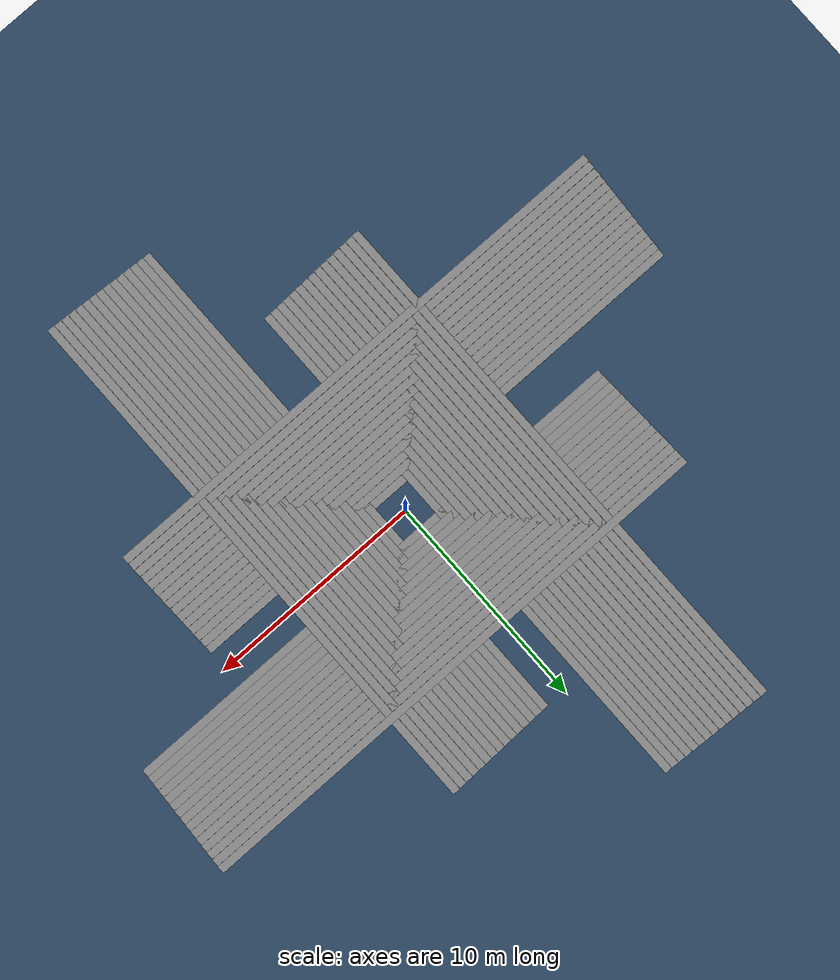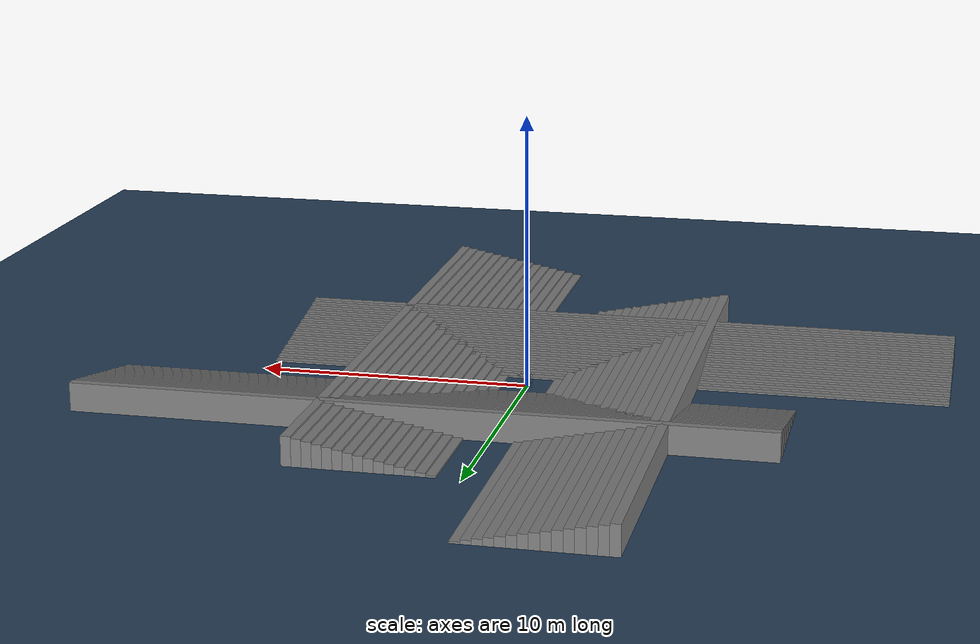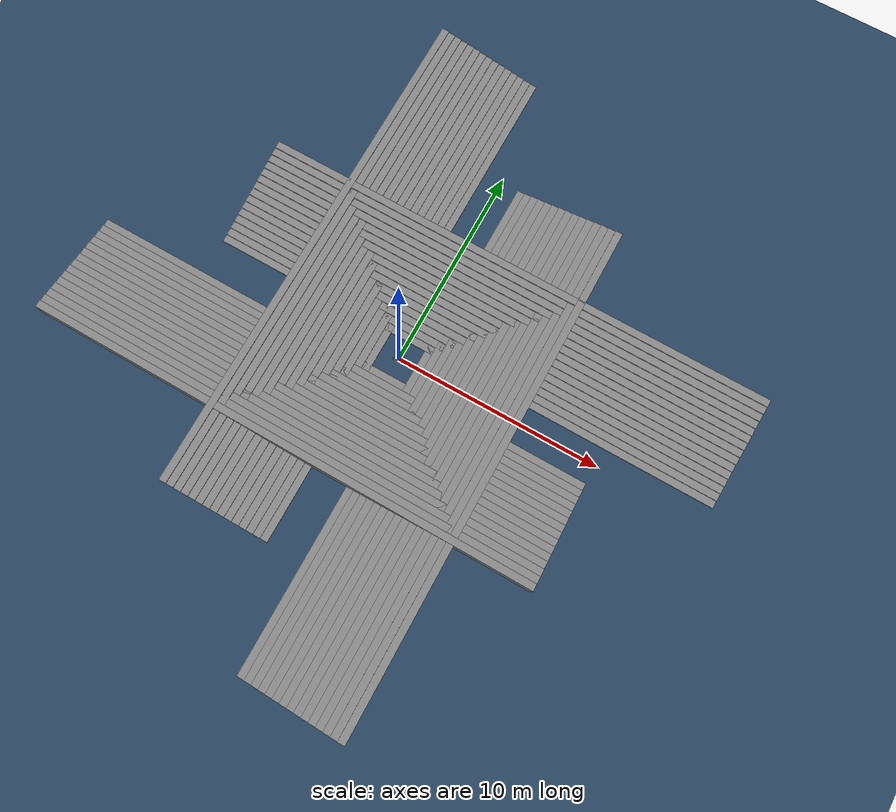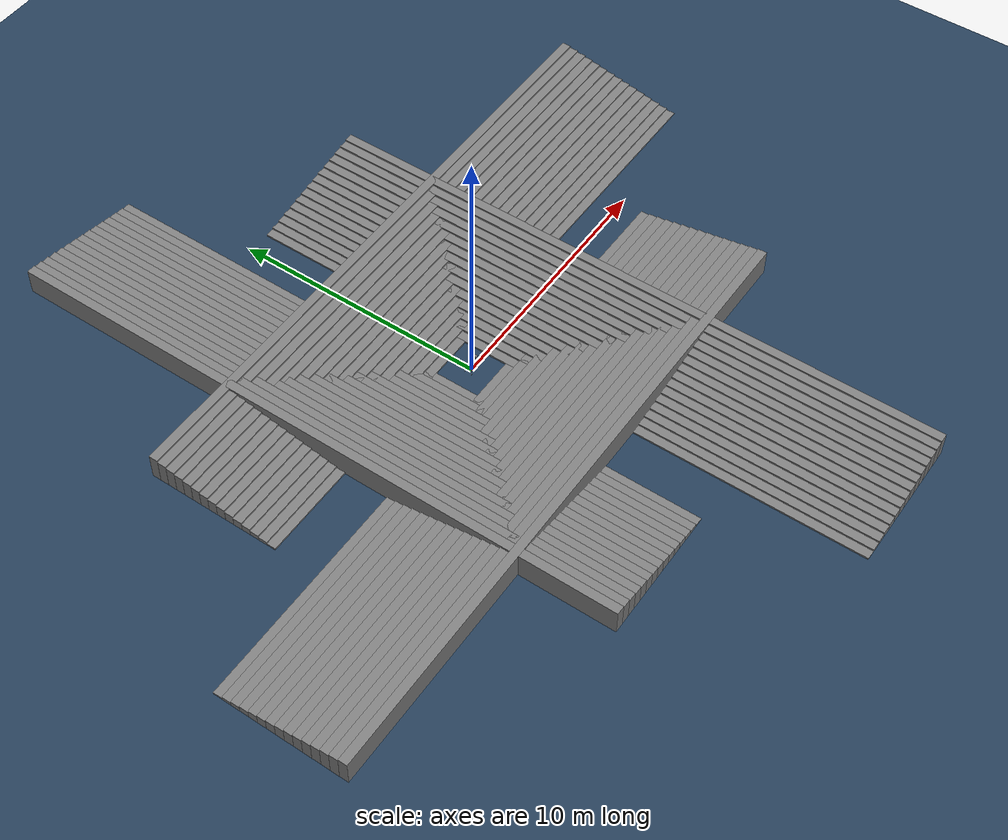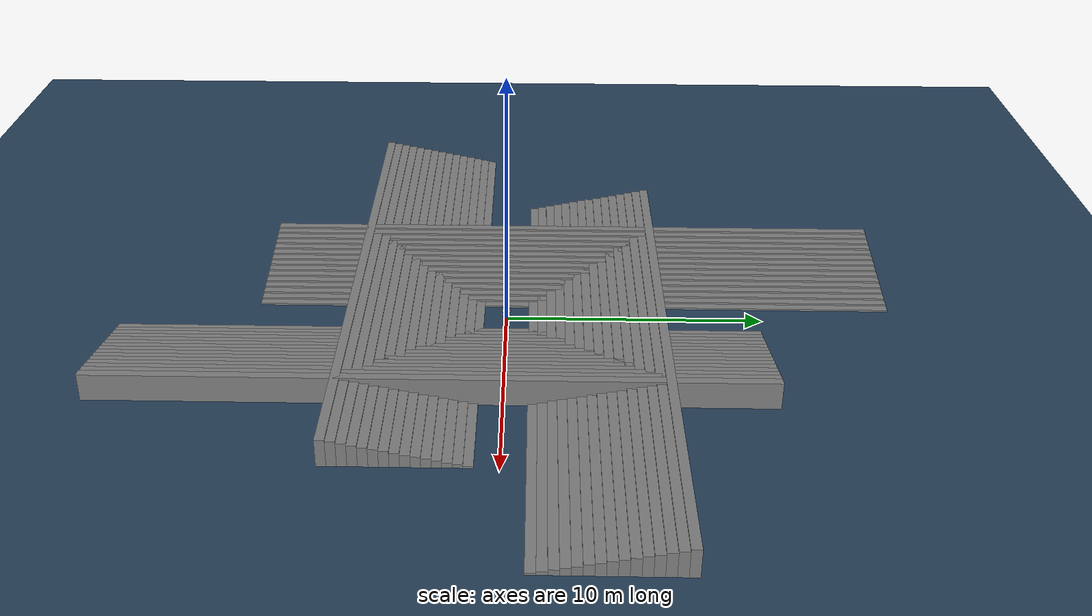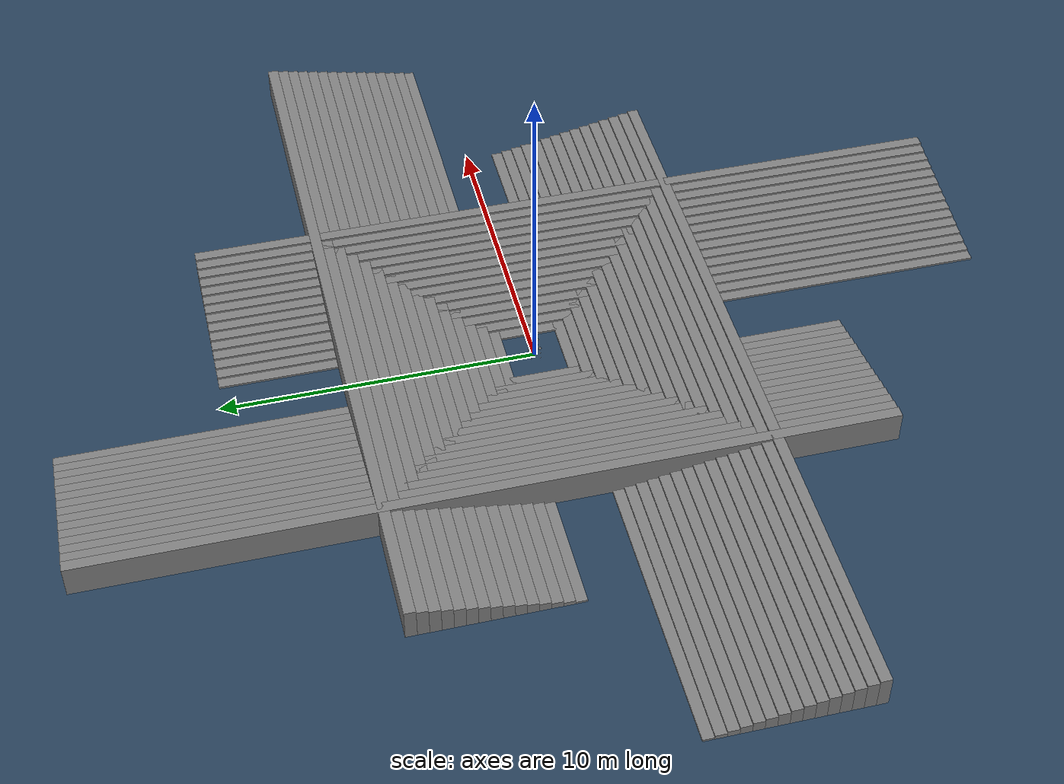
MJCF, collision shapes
<mujoco model="go2 scene">
  <include file="go2_mjx_feetonly.xml" />

  <statistic center="0 0 0.1" extent="0.8" />

  <visual>
    <headlight diffuse="0.6 0.6 0.6" ambient="0.3 0.3 0.3" specular="0 0 0" />
    <rgba haze="0.15 0.25 0.35 1" />
    <global azimuth="-130" elevation="-20" />
  </visual>

  <asset>
    <texture type="skybox" builtin="gradient" rgb1="0.3 0.5 0.7" rgb2="0 0 0" width="512" height="3072" />
    <texture type="2d" name="groundplane" builtin="checker" mark="edge" rgb1="0.2 0.3 0.4" rgb2="0.1 0.2 0.3" markrgb="0.8 0.8 0.8" width="300" height="300" />
    <material name="groundplane" texture="groundplane" texuniform="true" texrepeat="5 5" reflectance="0.2" />
  </asset>

  <worldbody>
    <light pos="0 0 1.5" dir="0 0 -1" directional="true" />
    <geom name="floor" pos="0 0 -1e-3" size="0 0 0.01" type="plane" contype="2" conaffinity="1" material="groundplane" />
  <body pos="1.0499999999999998 -2.625 0.035" quat="1.0 0.0 0.0 0.0" name="box_OXrZo"><geom type="box" size="0.175 12.5 0.035" contype="2" conaffinity="1" /></body><body pos="1.4 -2.625 0.07" quat="1.0 0.0 0.0 0.0" name="box_JxrvV"><geom type="box" size="0.175 12.5 0.07" contype="2" conaffinity="1" /></body><body pos="1.75 -2.625 0.10500000000000001" quat="1.0 0.0 0.0 0.0" name="box_W2zAn"><geom type="box" size="0.175 12.5 0.10500000000000001" contype="2" conaffinity="1" /></body><body pos="2.0999999999999996 -2.625 0.14" quat="1.0 0.0 0.0 0.0" name="box_HIghV"><geom type="box" size="0.175 12.5 0.14" contype="2" conaffinity="1" /></body><body pos="2.4499999999999997 -2.625 0.17500000000000002" quat="1.0 0.0 0.0 0.0" name="box_5wX6B"><geom type="box" size="0.175 12.5 0.17500000000000002" contype="2" conaffinity="1" /></body><body pos="2.8 -2.625 0.21000000000000002" quat="1.0 0.0 0.0 0.0" name="box_v3nrt"><geom type="box" size="0.175 12.5 0.21000000000000002" contype="2" conaffinity="1" /></body><body pos="3.15 -2.625 0.24500000000000002" quat="1.0 0.0 0.0 0.0" name="box_5fhSh"><geom type="box" size="0.175 12.5 0.24500000000000002" contype="2" conaffinity="1" /></body><body pos="3.5 -2.625 0.28" quat="1.0 0.0 0.0 0.0" name="box_dRxqI"><geom type="box" size="0.175 12.5 0.28" contype="2" conaffinity="1" /></body><body pos="3.85 -2.625 0.31500000000000006" quat="1.0 0.0 0.0 0.0" name="box_NodoP"><geom type="box" size="0.175 12.5 0.31500000000000006" contype="2" conaffinity="1" /></body><body pos="4.2 -2.625 0.3500000000000001" quat="1.0 0.0 0.0 0.0" name="box_2KfXV"><geom type="box" size="0.175 12.5 0.3500000000000001" contype="2" conaffinity="1" /></body><body pos="4.550000000000001 -2.625 0.3850000000000001" quat="1.0 0.0 0.0 0.0" name="box_l3Iw6"><geom type="box" size="0.175 12.5 0.3850000000000001" contype="2" conaffinity="1" /></body><body pos="4.9 -2.625 0.42000000000000015" quat="1.0 0.0 0.0 0.0" name="box_0yF7s"><geom type="box" size="0.175 12.5 0.42000000000000015" contype="2" conaffinity="1" /></body><body pos="5.25 -2.625 0.4550000000000002" quat="1.0 0.0 0.0 0.0" name="box_IzRpZ"><geom type="box" size="0.175 12.5 0.4550000000000002" contype="2" conaffinity="1" /></body><body pos="5.6 -2.625 0.4900000000000002" quat="1.0 0.0 0.0 0.0" name="box_MKdHR"><geom type="box" size="0.175 12.5 0.4900000000000002" contype="2" conaffinity="1" /></body><body pos="5.949999999999999 -2.625 0.5250000000000002" quat="1.0 0.0 0.0 0.0" name="box_BC6ZX"><geom type="box" size="0.175 12.5 0.5250000000000002" contype="2" conaffinity="1" /></body><body pos="2.625 1.0500000000000003 0.035" quat="0.7071067811865476 0.0 0.0 0.7071067811865475" name="box_NvFSA"><geom type="box" size="0.175 12.5 0.035" contype="2" conaffinity="1" /></body><body pos="2.625 1.4000000000000004 0.07" quat="0.7071067811865476 0.0 0.0 0.7071067811865475" name="box_u7tkv"><geom type="box" size="0.175 12.5 0.07" contype="2" conaffinity="1" /></body><body pos="2.625 1.7500000000000007 0.10500000000000001" quat="0.7071067811865476 0.0 0.0 0.7071067811865475" name="box_N826C"><geom type="box" size="0.175 12.5 0.10500000000000001" contype="2" conaffinity="1" /></body><body pos="2.625 2.1000000000000005 0.14" quat="0.7071067811865476 0.0 0.0 0.7071067811865475" name="box_wPMWJ"><geom type="box" size="0.175 12.5 0.14" contype="2" conaffinity="1" /></body><body pos="2.625 2.45 0.17500000000000002" quat="0.7071067811865476 0.0 0.0 0.7071067811865475" name="box_8RcA2"><geom type="box" size="0.175 12.5 0.17500000000000002" contype="2" conaffinity="1" /></body><body pos="2.625 2.8000000000000003 0.21000000000000002" quat="0.7071067811865476 0.0 0.0 0.7071067811865475" name="box_ZB0L3"><geom type="box" size="0.175 12.5 0.21000000000000002" contype="2" conaffinity="1" /></body><body pos="2.625 3.1500000000000004 0.24500000000000002" quat="0.7071067811865476 0.0 0.0 0.7071067811865475" name="box_6W6to"><geom type="box" size="0.175 12.5 0.24500000000000002" contype="2" conaffinity="1" /></body><body pos="2.625 3.5000000000000004 0.28" quat="0.7071067811865476 0.0 0.0 0.7071067811865475" name="box_ry0cr"><geom type="box" size="0.175 12.5 0.28" contype="2" conaffinity="1" /></body><body pos="2.625 3.8500000000000005 0.31500000000000006" quat="0.7071067811865476 0.0 0.0 0.7071067811865475" name="box_7p0jk"><geom type="box" size="0.175 12.5 0.31500000000000006" contype="2" conaffinity="1" /></body><body pos="2.625 4.200000000000001 0.3500000000000001" quat="0.7071067811865476 0.0 0.0 0.7071067811865475" name="box_iJvE4"><geom type="box" size="0.175 12.5 0.3500000000000001" contype="2" conaffinity="1" /></body><body pos="2.625 4.550000000000001 0.3850000000000001" quat="0.7071067811865476 0.0 0.0 0.7071067811865475" name="box_VLzhV"><geom type="box" size="0.175 12.5 0.3850000000000001" contype="2" conaffinity="1" /></body><body pos="2.625 4.900000000000001 0.42000000000000015" quat="0.7071067811865476 0.0 0.0 0.7071067811865475" name="box_rzAX5"><geom type="box" size="0.175 12.5 0.42000000000000015" contype="2" conaffinity="1" /></body><body pos="2.625 5.250000000000001 0.4550000000000002" quat="0.7071067811865476 0.0 0.0 0.7071067811865475" name="box_nCh3A"><geom type="box" size="0.175 12.5 0.4550000000000002" contype="2" conaffinity="1" /></body><body pos="2.625 5.6 0.4900000000000002" quat="0.7071067811865476 0.0 0.0 0.7071067811865475" name="box_TCJrI"><geom type="box" size="0.175 12.5 0.4900000000000002" contype="2" conaffinity="1" /></body><body pos="2.625 5.949999999999999 0.5250000000000002" quat="0.7071067811865476 0.0 0.0 0.7071067811865475" name="box_R8bSg"><geom type="box" size="0.175 12.5 0.5250000000000002" contype="2" conaffinity="1" /></body><body pos="-1.0500000000000012 2.625 0.035" quat="6.123233995736766e-17 0.0 0.0 1.0" name="box_r7ZRi"><geom type="box" size="0.175 12.5 0.035" contype="2" conaffinity="1" /></body><body pos="-1.4000000000000012 2.625 0.07" quat="6.123233995736766e-17 0.0 0.0 1.0" name="box_Nf8J5"><geom type="box" size="0.175 12.5 0.07" contype="2" conaffinity="1" /></body><body pos="-1.750000000000001 2.625 0.10500000000000001" quat="6.123233995736766e-17 0.0 0.0 1.0" name="box_yC71r"><geom type="box" size="0.175 12.5 0.10500000000000001" contype="2" conaffinity="1" /></body><body pos="-2.100000000000001 2.625 0.14" quat="6.123233995736766e-17 0.0 0.0 1.0" name="box_DBmvP"><geom type="box" size="0.175 12.5 0.14" contype="2" conaffinity="1" /></body><body pos="-2.450000000000001 2.625 0.17500000000000002" quat="6.123233995736766e-17 0.0 0.0 1.0" name="box_UAePs"><geom type="box" size="0.175 12.5 0.17500000000000002" contype="2" conaffinity="1" /></body><body pos="-2.800000000000001 2.625 0.21000000000000002" quat="6.123233995736766e-17 0.0 0.0 1.0" name="box_5cn2Z"><geom type="box" size="0.175 12.5 0.21000000000000002" contype="2" conaffinity="1" /></body><body pos="-3.1500000000000012 2.625 0.24500000000000002" quat="6.123233995736766e-17 0.0 0.0 1.0" name="box_Ffchz"><geom type="box" size="0.175 12.5 0.24500000000000002" contype="2" conaffinity="1" /></body><body pos="-3.5000000000000013 2.625 0.28" quat="6.123233995736766e-17 0.0 0.0 1.0" name="box_DXC0J"><geom type="box" size="0.175 12.5 0.28" contype="2" conaffinity="1" /></body><body pos="-3.8500000000000014 2.625 0.31500000000000006" quat="6.123233995736766e-17 0.0 0.0 1.0" name="box_cKuHj"><geom type="box" size="0.175 12.5 0.31500000000000006" contype="2" conaffinity="1" /></body><body pos="-4.200000000000001 2.625 0.3500000000000001" quat="6.123233995736766e-17 0.0 0.0 1.0" name="box_Y3Kyr"><geom type="box" size="0.175 12.5 0.3500000000000001" contype="2" conaffinity="1" /></body><body pos="-4.550000000000002 2.625 0.3850000000000001" quat="6.123233995736766e-17 0.0 0.0 1.0" name="box_YeYfn"><geom type="box" size="0.175 12.5 0.3850000000000001" contype="2" conaffinity="1" /></body><body pos="-4.900000000000001 2.625 0.42000000000000015" quat="6.123233995736766e-17 0.0 0.0 1.0" name="box_KpoVC"><geom type="box" size="0.175 12.5 0.42000000000000015" contype="2" conaffinity="1" /></body><body pos="-5.250000000000001 2.625 0.4550000000000002" quat="6.123233995736766e-17 0.0 0.0 1.0" name="box_2e7YW"><geom type="box" size="0.175 12.5 0.4550000000000002" contype="2" conaffinity="1" /></body><body pos="-5.600000000000001 2.625 0.4900000000000002" quat="6.123233995736766e-17 0.0 0.0 1.0" name="box_w5SWV"><geom type="box" size="0.175 12.5 0.4900000000000002" contype="2" conaffinity="1" /></body><body pos="-5.950000000000001 2.625 0.5250000000000002" quat="6.123233995736766e-17 0.0 0.0 1.0" name="box_4tdPD"><geom type="box" size="0.175 12.5 0.5250000000000002" contype="2" conaffinity="1" /></body><body pos="-2.625 -1.0499999999999994 0.035" quat="0.7071067811865476 0.0 0.0 -0.7071067811865475" name="box_fZAyx"><geom type="box" size="0.175 12.5 0.035" contype="2" conaffinity="1" /></body><body pos="-2.625 -1.3999999999999995 0.07" quat="0.7071067811865476 0.0 0.0 -0.7071067811865475" name="box_cpNqt"><geom type="box" size="0.175 12.5 0.07" contype="2" conaffinity="1" /></body><body pos="-2.625 -1.7499999999999993 0.10500000000000001" quat="0.7071067811865476 0.0 0.0 -0.7071067811865475" name="box_ag79r"><geom type="box" size="0.175 12.5 0.10500000000000001" contype="2" conaffinity="1" /></body><body pos="-2.625 -2.099999999999999 0.14" quat="0.7071067811865476 0.0 0.0 -0.7071067811865475" name="box_0QLHN"><geom type="box" size="0.175 12.5 0.14" contype="2" conaffinity="1" /></body><body pos="-2.625 -2.4499999999999993 0.17500000000000002" quat="0.7071067811865476 0.0 0.0 -0.7071067811865475" name="box_u9mqZ"><geom type="box" size="0.175 12.5 0.17500000000000002" contype="2" conaffinity="1" /></body><body pos="-2.625 -2.7999999999999994 0.21000000000000002" quat="0.7071067811865476 0.0 0.0 -0.7071067811865475" name="box_HiYUY"><geom type="box" size="0.175 12.5 0.21000000000000002" contype="2" conaffinity="1" /></body><body pos="-2.625 -3.1499999999999995 0.24500000000000002" quat="0.7071067811865476 0.0 0.0 -0.7071067811865475" name="box_Xw7Qg"><geom type="box" size="0.175 12.5 0.24500000000000002" contype="2" conaffinity="1" /></body><body pos="-2.625 -3.4999999999999996 0.28" quat="0.7071067811865476 0.0 0.0 -0.7071067811865475" name="box_qxefj"><geom type="box" size="0.175 12.5 0.28" contype="2" conaffinity="1" /></body><body pos="-2.625 -3.8499999999999996 0.31500000000000006" quat="0.7071067811865476 0.0 0.0 -0.7071067811865475" name="box_Z2qRy"><geom type="box" size="0.175 12.5 0.31500000000000006" contype="2" conaffinity="1" /></body><body pos="-2.625 -4.199999999999999 0.3500000000000001" quat="0.7071067811865476 0.0 0.0 -0.7071067811865475" name="box_4B1pi"><geom type="box" size="0.175 12.5 0.3500000000000001" contype="2" conaffinity="1" /></body><body pos="-2.625 -4.55 0.3850000000000001" quat="0.7071067811865476 0.0 0.0 -0.7071067811865475" name="box_r9nyw"><geom type="box" size="0.175 12.5 0.3850000000000001" contype="2" conaffinity="1" /></body><body pos="-2.625 -4.8999999999999995 0.42000000000000015" quat="0.7071067811865476 0.0 0.0 -0.7071067811865475" name="box_HEsBd"><geom type="box" size="0.175 12.5 0.42000000000000015" contype="2" conaffinity="1" /></body><body pos="-2.625 -5.249999999999999 0.4550000000000002" quat="0.7071067811865476 0.0 0.0 -0.7071067811865475" name="box_IIPfr"><geom type="box" size="0.175 12.5 0.4550000000000002" contype="2" conaffinity="1" /></body><body pos="-2.625 -5.6 0.4900000000000002" quat="0.7071067811865476 0.0 0.0 -0.7071067811865475" name="box_douJ7"><geom type="box" size="0.175 12.5 0.4900000000000002" contype="2" conaffinity="1" /></body><body pos="-2.625 -5.949999999999999 0.5250000000000002" quat="0.7071067811865476 0.0 0.0 -0.7071067811865475" name="box_oFjnZ"><geom type="box" size="0.175 12.5 0.5250000000000002" contype="2" conaffinity="1" /></body></worldbody>
</mujoco>

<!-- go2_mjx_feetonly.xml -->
<mujoco model="go2">
  <compiler angle="radian" meshdir="assets" autolimits="true"/>

  <option cone="pyramidal" impratio="100" iterations="5" ls_iterations="5">
    <flag eulerdamp="disable"/>
  </option>
 <custom>
    <!-- Potentially optimal -->
    <!-- Safe-->
    <numeric data="4" name="max_contact_points"/>
    <numeric data="25" name="max_geom_pairs"/>
 </custom>
 <option iterations="5" ls_iterations="5" timestep="0.004" integrator="Euler">
    <flag eulerdamp="disable"/>
  </option>
  <default>
    <default class="go2">
      <geom friction="0.6" margin="0.001" condim="1" contype="0" conaffinity="0"/>

      <joint axis="0 1 0" damping="2" armature="0.01"/>
      <general forcerange="-24 24" biastype="affine" gainprm="50 0 0" biasprm="0 -50 -0.5"/>

      <default class="abduction">
        <joint axis="1 0 0" range="-1.0472 1.0472"/>
        <general ctrlrange="-0.9472 0.9472"/>
      </default>
      <default class="hip">
        <joint range="-1.5708 3.4907"/>
        <general ctrlrange="-1.4 2.5"/>
      </default>
      <default class="knee">
        <joint range="-2.7227 -0.83776"/>
        <general ctrlrange="-2.6227 -0.84776"/>
      </default>
      <default class="visual">
        <geom type="mesh" contype="0" conaffinity="0" group="2"/>
      </default>
      <default class="go2foot">
        <site group="1" pos="-0.002 0 -0.213"/>
        <geom rgba="0.231373 0.380392 0.705882 1"/>
      </default>
      <default class="collision">
        <geom group="3"/>
        <default class="foot">
          <geom type="sphere" size="0.0175" pos="-0.002 0 -0.213" solimp="0.015 1 0.031" contype="1" conaffinity="2" margin="-0.001"/>

        </default>
      </default>
    </default>
  </default>

  <asset>
    <material name="metal" rgba=".9 .95 .95 1"/>
    <material name="black" rgba="0 0 0 1"/>
    <material name="white" rgba="1 1 1 1"/>
    <material name="gray" rgba="0.671705 0.692426 0.774270 1"/>

    <mesh file="base_0.obj"/>
    <mesh file="base_1.obj"/>
    <mesh file="base_2.obj"/>
    <mesh file="base_3.obj"/>
    <mesh file="base_4.obj"/>
    <mesh file="hip_0.obj"/>
    <mesh file="hip_1.obj"/>
    <mesh file="thigh_0.obj"/>
    <mesh file="thigh_1.obj"/>
    <mesh file="thigh_mirror_0.obj"/>
    <mesh file="thigh_mirror_1.obj"/>
    <mesh file="calf_0.obj"/>
    <mesh file="calf_1.obj"/>
    <mesh file="calf_mirror_0.obj"/>
    <mesh file="calf_mirror_1.obj"/>
    <mesh file="foot.obj"/>
  </asset>

  <worldbody>
    <body name="base" pos="0 0 0.445" childclass="go2">
      <camera name="track" pos="0.846 -1.465 0.916" xyaxes="0.866 0.500 0.000 -0.171 0.296 0.940" mode="trackcom"/>
      <inertial pos="0.021112 0 -0.005366" quat="-0.000543471 0.713435 -0.00173769 0.700719" mass="6.921"
        diaginertia="0.107027 0.0980771 0.0244531"/>
      <freejoint/>
      <geom mesh="base_0" material="black" class="visual"/>
      <geom mesh="base_1" material="black" class="visual"/>
      <geom mesh="base_2" material="black" class="visual"/>
      <geom mesh="base_3" material="white" class="visual"/>
      <geom mesh="base_4" material="gray" class="visual"/>
      <geom size="0.057 0.04675 0.057" class="collision"/>
      <geom size="0.05 0.045" pos="0.285 0 0.01" class="collision"/>
      <geom size="0.047" pos="0.293 0 -0.06" class="collision"/>
      <site name="imu" pos="-0.02557 0 0.04232"/>
      <body name="FL_hip" pos="0.1934 0.0465 0">
        <inertial pos="-0.0054 0.00194 -0.000105" quat="0.497014 0.499245 0.505462 0.498237" mass="0.678"
          diaginertia="0.00088403 0.000596003 0.000479967"/>
        <joint name="FL_hip_joint" class="abduction"/>
        <geom mesh="hip_0" material="metal" class="visual"/>
        <geom mesh="hip_1" material="gray" class="visual"/>
        <geom size="0.046 0.02" pos="0 0.08 0" quat="1 1 0 0" class="collision"/>
        <body name="FL_thigh" pos="0 0.0955 0">
          <inertial pos="-0.00374 -0.0223 -0.0327" quat="0.829533 0.0847635 -0.0200632 0.551623" mass="1.152"
            diaginertia="0.00594973 0.00584149 0.000878787"/>
          <joint name="FL_thigh_joint" class="hip"/>
          <geom mesh="thigh_0" material="metal" class="visual"/>
          <geom mesh="thigh_1" material="gray" class="visual"/>
          <geom size="0.017 0.01225 0.017" pos="-0.015 0 -0.1955" quat="0.707107 0 0.707107 0" class="collision"/>
          <body name="FL_calf" pos="0 0 -0.213">
            <inertial pos="0.00629595 -0.000622121 -0.141417" quat="0.710672 0.00154099 -0.00450087 0.703508"
              mass="0.241352" diaginertia="0.0014901 0.00146356 5.31397e-05"/>
            <joint name="FL_calf_joint" class="knee"/>
            <geom mesh="calf_0" material="gray" class="visual"/>
            <geom mesh="calf_1" material="black" class="visual"/>
            <geom size="0.012 0.06" pos="0.008 0 -0.06" quat="0.994493 0 -0.104807 0" class="collision"/>
            <geom size="0.011 0.0325" pos="0.02 0 -0.148" quat="0.999688 0 0.0249974 0" class="collision"/>
            <geom pos="0 0 -0.213" mesh="foot" class="visual" material="black"/>
            <geom name="FL" class="foot"/>
            <site name="FL_foot" class="go2foot"/>
          </body>
        </body>
      </body>
      <body name="FR_hip" pos="0.1934 -0.0465 0">
        <inertial pos="-0.0054 -0.00194 -0.000105" quat="0.498237 0.505462 0.499245 0.497014" mass="0.678"
          diaginertia="0.00088403 0.000596003 0.000479967"/>
        <joint name="FR_hip_joint" class="abduction"/>
        <geom mesh="hip_0" material="metal" class="visual" quat="4.63268e-05 1 0 0"/>
        <geom mesh="hip_1" material="gray" class="visual" quat="4.63268e-05 1 0 0"/>
        <geom size="0.046 0.02" pos="0 -0.08 0" quat="0.707107 0.707107 0 0" class="collision"/>
        <body name="FR_thigh" pos="0 -0.0955 0">
          <inertial pos="-0.00374 0.0223 -0.0327" quat="0.551623 -0.0200632 0.0847635 0.829533" mass="1.152"
            diaginertia="0.00594973 0.00584149 0.000878787"/>
          <joint name="FR_thigh_joint" class="hip"/>
          <geom mesh="thigh_mirror_0" material="metal" class="visual"/>
          <geom mesh="thigh_mirror_1" material="gray" class="visual"/>
          <geom size="0.017 0.01225 0.017" pos="-0.015 0 -0.1955" quat="0.707107 0 0.707107 0" class="collision"/>
          <body name="FR_calf" pos="0 0 -0.213">
            <inertial pos="0.00629595 0.000622121 -0.141417" quat="0.703508 -0.00450087 0.00154099 0.710672"
              mass="0.241352" diaginertia="0.0014901 0.00146356 5.31397e-05"/>
            <joint name="FR_calf_joint" class="knee"/>
            <geom mesh="calf_mirror_0" material="gray" class="visual"/>
            <geom mesh="calf_mirror_1" material="black" class="visual"/>
            <geom size="0.013 0.06" pos="0.01 0 -0.06" quat="0.995004 0 -0.0998334 0" class="collision"/>
            <geom size="0.011 0.0325" pos="0.02 0 -0.148" quat="0.999688 0 0.0249974 0" class="collision"/>
            <geom pos="0 0 -0.213" mesh="foot" class="visual" material="black"/>
            <geom name="FR" class="foot"/>
            <site name="FR_foot" class="go2foot"/>
          </body>
        </body>
      </body>
      <body name="RL_hip" pos="-0.1934 0.0465 0">
        <inertial pos="0.0054 0.00194 -0.000105" quat="0.505462 0.498237 0.497014 0.499245" mass="0.678"
          diaginertia="0.00088403 0.000596003 0.000479967"/>
        <joint name="RL_hip_joint" class="abduction"/>
        <geom mesh="hip_0" material="metal" class="visual" quat="4.63268e-05 0 1 0"/>
        <geom mesh="hip_1" material="gray" class="visual" quat="4.63268e-05 0 1 0"/>
        <geom size="0.046 0.02" pos="0 0.08 0" quat="0.707107 0.707107 0 0" class="collision"/>
        <body name="RL_thigh" pos="0 0.0955 0">
          <inertial pos="-0.00374 -0.0223 -0.0327" quat="0.829533 0.0847635 -0.0200632 0.551623" mass="1.152"
            diaginertia="0.00594973 0.00584149 0.000878787"/>
          <joint name="RL_thigh_joint" class="hip"/>
          <geom mesh="thigh_0" material="metal" class="visual"/>
          <geom mesh="thigh_1" material="gray" class="visual"/>
          <geom size="0.017 0.01225 0.017" pos="-0.015 0 -0.1955" quat="0.707107 0 0.707107 0" class="collision"/>
          <body name="RL_calf" pos="0 0 -0.213">
            <inertial pos="0.00629595 -0.000622121 -0.141417" quat="0.710672 0.00154099 -0.00450087 0.703508"
              mass="0.241352" diaginertia="0.0014901 0.00146356 5.31397e-05"/>
            <joint name="RL_calf_joint" class="knee"/>
            <geom mesh="calf_0" material="gray" class="visual"/>
            <geom mesh="calf_1" material="black" class="visual"/>
            <geom size="0.013 0.06" pos="0.01 0 -0.06" quat="0.995004 0 -0.0998334 0" class="collision"/>
            <geom size="0.011 0.0325" pos="0.02 0 -0.148" quat="0.999688 0 0.0249974 0" class="collision"/>
            <geom pos="0 0 -0.213" mesh="foot" class="visual" material="black"/>
            <geom name="RL" class="foot"/>
            <site name="RL_foot" class="go2foot"/>
          </body>
        </body>
      </body>
      <body name="RR_hip" pos="-0.1934 -0.0465 0">
        <inertial pos="0.0054 -0.00194 -0.000105" quat="0.499245 0.497014 0.498237 0.505462" mass="0.678"
          diaginertia="0.00088403 0.000596003 0.000479967"/>
        <joint name="RR_hip_joint" class="abduction"/>
        <geom mesh="hip_0" material="metal" class="visual" quat="2.14617e-09 4.63268e-05 4.63268e-05 -1"/>
        <geom mesh="hip_1" material="gray" class="visual" quat="2.14617e-09 4.63268e-05 4.63268e-05 -1"/>
        <geom size="0.046 0.02" pos="0 -0.08 0" quat="0.707107 0.707107 0 0" class="collision"/>
        <body name="RR_thigh" pos="0 -0.0955 0">
          <inertial pos="-0.00374 0.0223 -0.0327" quat="0.551623 -0.0200632 0.0847635 0.829533" mass="1.152"
            diaginertia="0.00594973 0.00584149 0.000878787"/>
          <joint name="RR_thigh_joint" class="hip"/>
          <geom mesh="thigh_mirror_0" material="metal" class="visual"/>
          <geom mesh="thigh_mirror_1" material="gray" class="visual"/>
          <geom size="0.017 0.01225 0.017" pos="-0.015 0 -0.1955" quat="0.707107 0 0.707107 0" class="collision"/>
          <body name="RR_calf" pos="0 0 -0.213">
            <inertial pos="0.00629595 0.000622121 -0.141417" quat="0.703508 -0.00450087 0.00154099 0.710672"
              mass="0.241352" diaginertia="0.0014901 0.00146356 5.31397e-05"/>
            <joint name="RR_calf_joint" class="knee"/>
            <geom mesh="calf_mirror_0" material="gray" class="visual"/>
            <geom mesh="calf_mirror_1" material="black" class="visual"/>
            <geom size="0.013 0.06" pos="0.01 0 -0.06" quat="0.995004 0 -0.0998334 0" class="collision"/>
            <geom size="0.011 0.0325" pos="0.02 0 -0.148" quat="0.999688 0 0.0249974 0" class="collision"/>
            <geom pos="0 0 -0.213" mesh="foot" class="visual" material="black"/>
            <geom name="RR" class="foot"/>
            <site name="RR_foot" class="go2foot"/>
          </body>
        </body>
      </body>
    </body>
  </worldbody>

  <actuator>
    <position class="abduction" name="FR_hip" joint="FR_hip_joint"/>
    <position class="hip" name="FR_thigh" joint="FR_thigh_joint"/>
    <position class="knee" name="FR_calf" joint="FR_calf_joint"/>
    <position class="abduction" name="FL_hip" joint="FL_hip_joint"/>
    <position class="hip" name="FL_thigh" joint="FL_thigh_joint"/>
    <position class="knee" name="FL_calf" joint="FL_calf_joint"/>
    <position class="abduction" name="RR_hip" joint="RR_hip_joint"/>
    <position class="hip" name="RR_thigh" joint="RR_thigh_joint"/>
    <position class="knee" name="RR_calf" joint="RR_calf_joint"/>
    <position class="abduction" name="RL_hip" joint="RL_hip_joint"/>
    <position class="hip" name="RL_thigh" joint="RL_thigh_joint"/>
    <position class="knee" name="RL_calf" joint="RL_calf_joint"/>
  </actuator>

  <sensor>
    <gyro site="imu" name="gyro"/>
    <accelerometer site="imu" name="accelerometer"/>
    <framequat objtype="site" objname="imu" name="orientation"/>
    <framepos objtype="site" objname="imu" name="global_position"/>
    <framelinvel objtype="site" objname="imu" name="global_linvel"/>
    <frameangvel objtype="site" objname="imu" name="global_angvel"/>
    <!-- returns local velocity of robot -->
    <velocimeter site="imu" name="local_linvel"/>
    <framezaxis objtype="site" objname="imu" name="upvector"/>
    <framepos objtype="site" objname="FR_foot" name="FR_pos" reftype="site" refname="imu"/>
    <framepos objtype="site" objname="FL_foot" name="FL_pos" reftype="site" refname="imu"/>
    <framepos objtype="site" objname="RR_foot" name="RR_pos" reftype="site" refname="imu"/>
    <framepos objtype="site" objname="RL_foot" name="RL_pos" reftype="site" refname="imu"/>
    <framelinvel objtype="site" objname="FR_foot" name="FR_foot_global_linvel"/>
    <framelinvel objtype="site" objname="FL_foot" name="FL_foot_global_linvel"/>
    <framelinvel objtype="site" objname="RR_foot" name="RR_foot_global_linvel"/>
    <framelinvel objtype="site" objname="RL_foot" name="RL_foot_global_linvel"/>

  </sensor>
  <!-- short -->
  <keyframe>
    <key name="home" qpos="0 0 0.28 1 0 0 0 0 0.9 -1.8 0 0.9 -1.8 0 0.9 -1.8 0 0.9 -1.8"
      ctrl="0 0.9 -1.8 0 0.9 -1.8 0 0.9 -1.8 0 0.9 -1.8"/>
  </keyframe>
  <!-- tall -->
  <!-- other -->
</mujoco>
